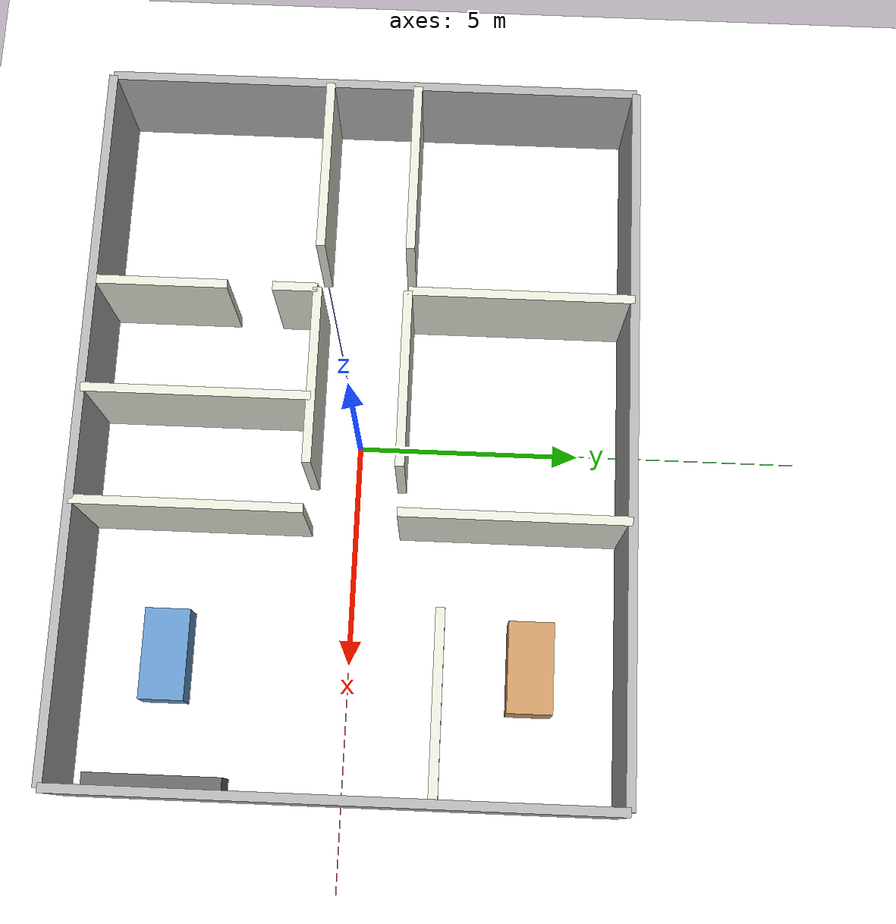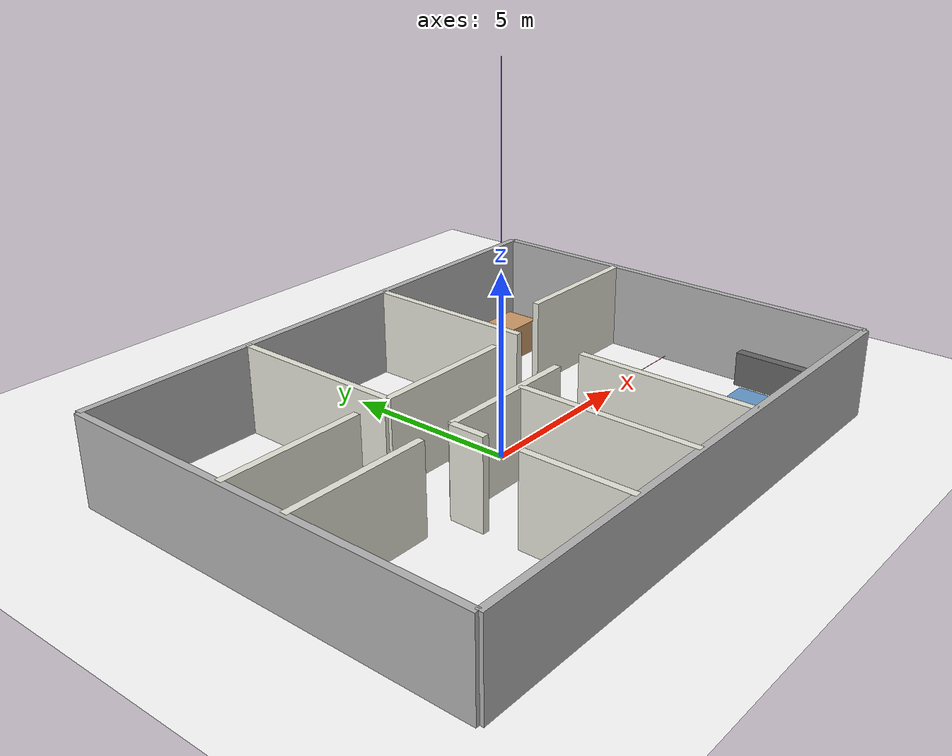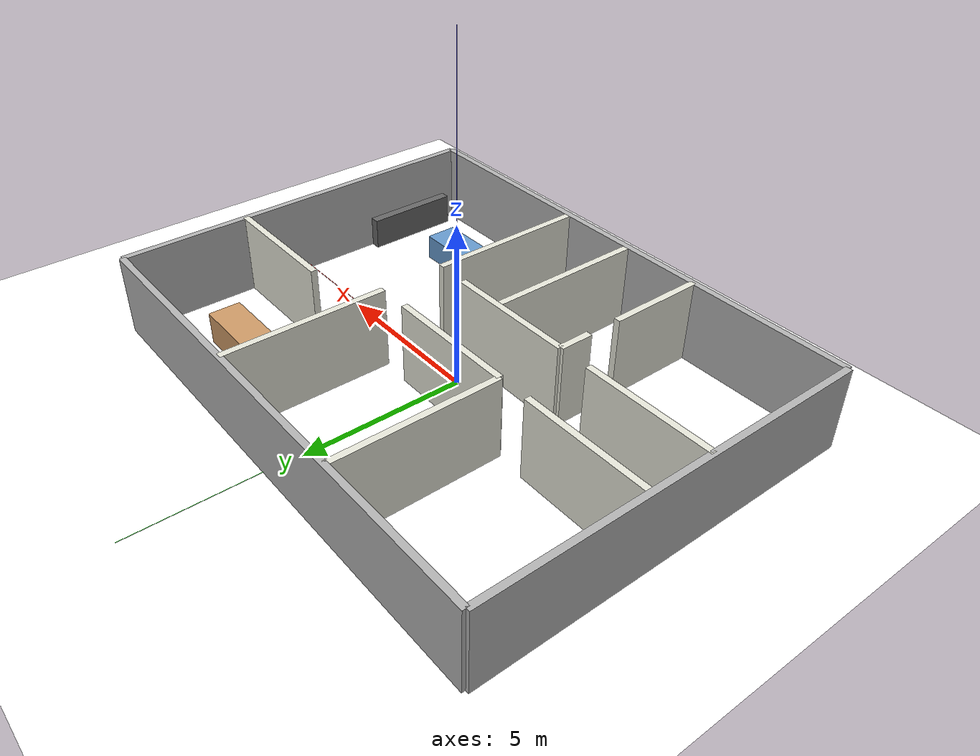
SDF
<sdf version="1.9">
 <world name="slam_world">
  <physics name="1ms" type="ignore">
   <max_step_size>0.001</max_step_size>
   <real_time_factor>1.0</real_time_factor>
  </physics>
  <plugin filename="gz-sim-physics-system" name="gz::sim::systems::Physics"/>
  <plugin filename="gz-sim-sensors-system" name="gz::sim::systems::Sensors">
   <render_engine>ogre2</render_engine>
  </plugin>
  <plugin filename="gz-sim-user-commands-system" name="gz::sim::systems::UserCommands"/>
  <plugin filename="gz-sim-scene-broadcaster-system" name="gz::sim::systems::SceneBroadcaster"/>
  <plugin filename="gz-sim-imu-system" name="gz::sim::systems::Imu"/>
  <plugin filename="gz-sim-navsat-system" name="gz::sim::systems::NavSat"/>
  <scene><ambient>1.0 1.0 1.0</ambient><background>0.8 0.8 0.8</background></scene>
  <spherical_coordinates>
   <latitude_deg>-35.363262</latitude_deg>
   <longitude_deg>149.165237</longitude_deg>
   <elevation>584</elevation>
   <heading_deg>0</heading_deg>
   <surface_model>EARTH_WGS84</surface_model>
  </spherical_coordinates>
  <light type="directional" name="sun">
   <pose>0 0 10 0 0 0</pose>
   <diffuse>0.8 0.8 0.8 1</diffuse>
   <specular>0.8 0.8 0.8 1</specular>
   <attenuation>
    <range>1000</range>
    <constant>0.9</constant>
    <linear>0.01</linear>
    <quadratic>0.001</quadratic>
   </attenuation>
   <direction>-0.5 0.1 -0.9</direction>
  </light>
  <model name="axes">
   <static>1</static>
   <link name="link">
    <visual name="r">
     <cast_shadows>0</cast_shadows>
     <pose>5 0 0.1 0 0 0</pose>
     <geometry><box><size>10 0.01 0.01</size></box></geometry>
     <material>
      <ambient>1 0 0 0.8</ambient>
      <diffuse>1 0 0 0.8</diffuse>
      <emissive>1 0 0 0.8</emissive>
      <specular>0.5 0.5 0.5 0.8</specular>
     </material>
    </visual>
    <visual name="g">
     <cast_shadows>0</cast_shadows>
     <pose>0 5 0.1 0 0 0</pose>
     <geometry><box><size>0.01 10 0.01</size></box></geometry>
     <material>
      <ambient>0 1 0 0.8</ambient>
      <diffuse>0 1 0 0.8</diffuse>
      <emissive>0 1 0 0.8</emissive>
      <specular>0.5 0.5 0.5 0.8</specular>
     </material>
    </visual>
    <visual name="b">
     <cast_shadows>0</cast_shadows>
     <pose>0 0 5.1 0 0 0</pose>
     <geometry><box><size>0.01 0.01 10</size></box></geometry>
     <material>
      <ambient>0 0 1 0.8</ambient>
      <diffuse>0 0 1 0.8</diffuse>
      <emissive>0 0 1 0.8</emissive>
      <specular>0.5 0.5 0.5 0.8</specular>
     </material>
    </visual>
    <sensor name="navsat_sensor" type="navsat"><always_on>1</always_on><update_rate>1</update_rate></sensor>
   </link>
  </model>
  <model name="white_ground_plane">
   <static>true</static>
   <link name="link">
    <collision name="collision">
     <geometry><plane><normal>0 0 1</normal><size>100 100</size></plane></geometry>
    </collision>
    <visual name="visual">
     <geometry><plane><normal>0 0 1</normal><size>100 100</size></plane></geometry>
     <material><ambient>1 1 1 1</ambient><diffuse>1 1 1 1</diffuse><specular>1 1 1 1</specular></material>
    </visual>
   </link>
  </model>
  <model name="apartment_3bhk">
   <static>true</static>
   <link name="wall_north">
    <pose>0 6 1.25 0 0 0</pose>
    <collision name="c"><geometry><box><size>16 0.2 2.5</size></box></geometry></collision>
    <visual name="v">
     <geometry><box><size>16 0.2 2.5</size></box></geometry>
     <material><ambient>0.7 0.7 0.7 1</ambient><diffuse>0.7 0.7 0.7 1</diffuse></material>
    </visual>
   </link>
   <link name="wall_south">
    <pose>0 -6 1.25 0 0 0</pose>
    <collision name="c"><geometry><box><size>16 0.2 2.5</size></box></geometry></collision>
    <visual name="v">
     <geometry><box><size>16 0.2 2.5</size></box></geometry>
     <material><ambient>0.7 0.7 0.7 1</ambient><diffuse>0.7 0.7 0.7 1</diffuse></material>
    </visual>
   </link>
   <link name="wall_east">
    <pose>8 0 1.25 0 0 0</pose>
    <collision name="c"><geometry><box><size>0.2 12 2.5</size></box></geometry></collision>
    <visual name="v">
     <geometry><box><size>0.2 12 2.5</size></box></geometry>
     <material><ambient>0.7 0.7 0.7 1</ambient><diffuse>0.7 0.7 0.7 1</diffuse></material>
    </visual>
   </link>
   <link name="wall_west">
    <pose>-8 0 1.25 0 0 0</pose>
    <collision name="c"><geometry><box><size>0.2 12 2.5</size></box></geometry></collision>
    <visual name="v">
     <geometry><box><size>0.2 12 2.5</size></box></geometry>
     <material><ambient>0.7 0.7 0.7 1</ambient><diffuse>0.7 0.7 0.7 1</diffuse></material>
    </visual>
   </link>
   <link name="hall_n_1">
    <pose>-6 1 1.25 0 0 0</pose>
    <collision name="c"><geometry><box><size>4 0.2 2.5</size></box></geometry></collision>
    <visual name="v">
     <geometry><box><size>4 0.2 2.5</size></box></geometry>
     <material><ambient>0.9 0.9 0.85 1</ambient><diffuse>0.9 0.9 0.85 1</diffuse></material>
    </visual>
   </link>
   <link name="hall_n_2">
    <pose>-1 1 1.25 0 0 0</pose>
    <collision name="c"><geometry><box><size>4 0.2 2.5</size></box></geometry></collision>
    <visual name="v">
     <geometry><box><size>4 0.2 2.5</size></box></geometry>
     <material><ambient>0.9 0.9 0.85 1</ambient><diffuse>0.9 0.9 0.85 1</diffuse></material>
    </visual>
   </link>
   <link name="hall_s_1">
    <pose>-6 -1 1.25 0 0 0</pose>
    <collision name="c"><geometry><box><size>4 0.2 2.5</size></box></geometry></collision>
    <visual name="v">
     <geometry><box><size>4 0.2 2.5</size></box></geometry>
     <material><ambient>0.9 0.9 0.85 1</ambient><diffuse>0.9 0.9 0.85 1</diffuse></material>
    </visual>
   </link>
   <link name="hall_s_2">
    <pose>-1 -1 1.25 0 0 0</pose>
    <collision name="c"><geometry><box><size>4 0.2 2.5</size></box></geometry></collision>
    <visual name="v">
     <geometry><box><size>4 0.2 2.5</size></box></geometry>
     <material><ambient>0.9 0.9 0.85 1</ambient><diffuse>0.9 0.9 0.85 1</diffuse></material>
    </visual>
   </link>
   <link name="div_bed1_2">
    <pose>-3 3.5 1.25 0 0 0</pose>
    <collision name="c"><geometry><box><size>0.2 5 2.5</size></box></geometry></collision>
    <visual name="v">
     <geometry><box><size>0.2 5 2.5</size></box></geometry>
     <material><ambient>0.9 0.9 0.85 1</ambient><diffuse>0.9 0.9 0.85 1</diffuse></material>
    </visual>
   </link>
   <link name="div_bed2_kit">
    <pose>2 3.5 1.25 0 0 0</pose>
    <collision name="c"><geometry><box><size>0.2 5 2.5</size></box></geometry></collision>
    <visual name="v">
     <geometry><box><size>0.2 5 2.5</size></box></geometry>
     <material><ambient>0.9 0.9 0.85 1</ambient><diffuse>0.9 0.9 0.85 1</diffuse></material>
    </visual>
   </link>
   <link name="kit_south">
    <pose>6 2 1.25 0 0 0</pose>
    <collision name="c"><geometry><box><size>4 0.2 2.5</size></box></geometry></collision>
    <visual name="v">
     <geometry><box><size>4 0.2 2.5</size></box></geometry>
     <material><ambient>0.9 0.9 0.85 1</ambient><diffuse>0.9 0.9 0.85 1</diffuse></material>
    </visual>
   </link>
   <link name="master_e_1">
    <pose>-3 -1.5 1.25 0 0 0</pose>
    <collision name="c"><geometry><box><size>0.2 1 2.5</size></box></geometry></collision>
    <visual name="v">
     <geometry><box><size>0.2 1 2.5</size></box></geometry>
     <material><ambient>0.9 0.9 0.85 1</ambient><diffuse>0.9 0.9 0.85 1</diffuse></material>
    </visual>
   </link>
   <link name="master_e_2">
    <pose>-3 -4.5 1.25 0 0 0</pose>
    <collision name="c"><geometry><box><size>0.2 3 2.5</size></box></geometry></collision>
    <visual name="v">
     <geometry><box><size>0.2 3 2.5</size></box></geometry>
     <material><ambient>0.9 0.9 0.85 1</ambient><diffuse>0.9 0.9 0.85 1</diffuse></material>
    </visual>
   </link>
   <link name="div_bath_liv">
    <pose>2 -3.5 1.25 0 0 0</pose>
    <collision name="c"><geometry><box><size>0.2 5 2.5</size></box></geometry></collision>
    <visual name="v">
     <geometry><box><size>0.2 5 2.5</size></box></geometry>
     <material><ambient>0.9 0.9 0.85 1</ambient><diffuse>0.9 0.9 0.85 1</diffuse></material>
    </visual>
   </link>
   <link name="div_ensuite_com">
    <pose>-0.5 -3.5 1.25 0 0 0</pose>
    <collision name="c"><geometry><box><size>0.2 5 2.5</size></box></geometry></collision>
    <visual name="v">
     <geometry><box><size>0.2 5 2.5</size></box></geometry>
     <material><ambient>0.9 0.9 0.85 1</ambient><diffuse>0.9 0.9 0.85 1</diffuse></material>
    </visual>
   </link>
   <link name="kitchen_island">
    <pose>5 4 0.5 0 0 0</pose>
    <collision name="c"><geometry><box><size>2 1 1</size></box></geometry></collision>
    <visual name="v">
     <geometry><box><size>2 1 1</size></box></geometry>
     <material><ambient>0.8 0.6 0.4 1</ambient><diffuse>0.8 0.6 0.4 1</diffuse></material>
    </visual>
   </link>
   <link name="sofa">
    <pose>5 -4 0.4 0 0 0</pose>
    <collision name="c"><geometry><box><size>2 1 0.8</size></box></geometry></collision>
    <visual name="v">
     <geometry><box><size>2 1 0.8</size></box></geometry>
     <material><ambient>0.4 0.6 0.8 1</ambient><diffuse>0.4 0.6 0.8 1</diffuse></material>
    </visual>
   </link>
   <link name="tv_console">
    <pose>7.8 -4 0.5 0 0 0</pose>
    <collision name="c"><geometry><box><size>0.4 3 1</size></box></geometry></collision>
    <visual name="v">
     <geometry><box><size>0.4 3 1</size></box></geometry>
     <material><ambient>0.4 0.4 0.4 1</ambient><diffuse>0.4 0.4 0.4 1</diffuse></material>
    </visual>
   </link>
  </model>
 </world>
</sdf>
